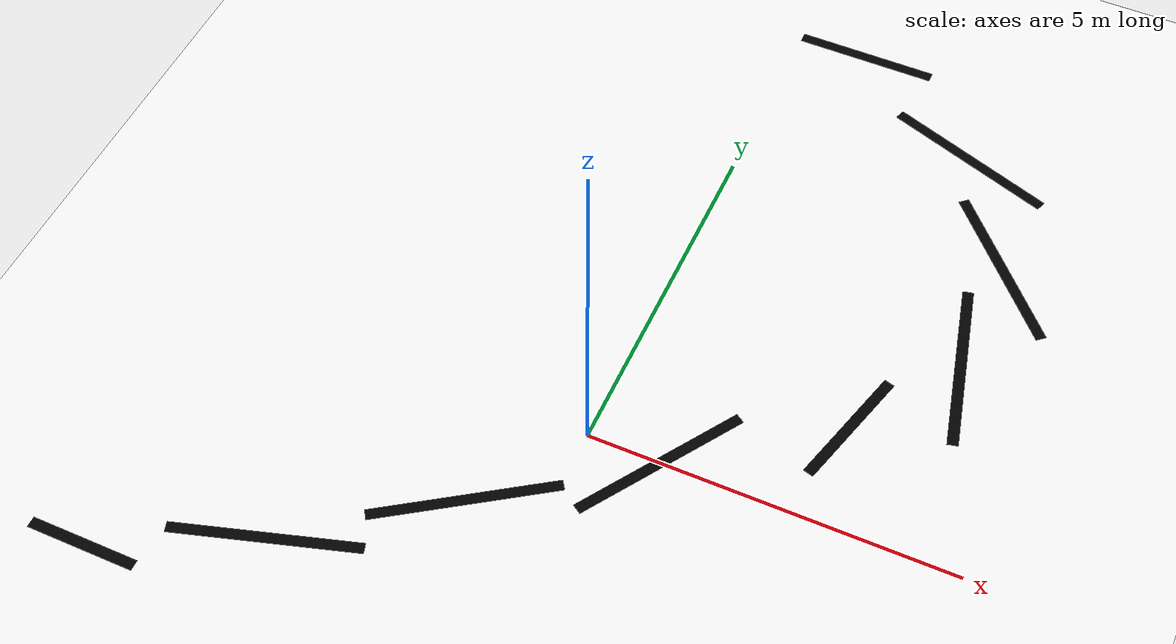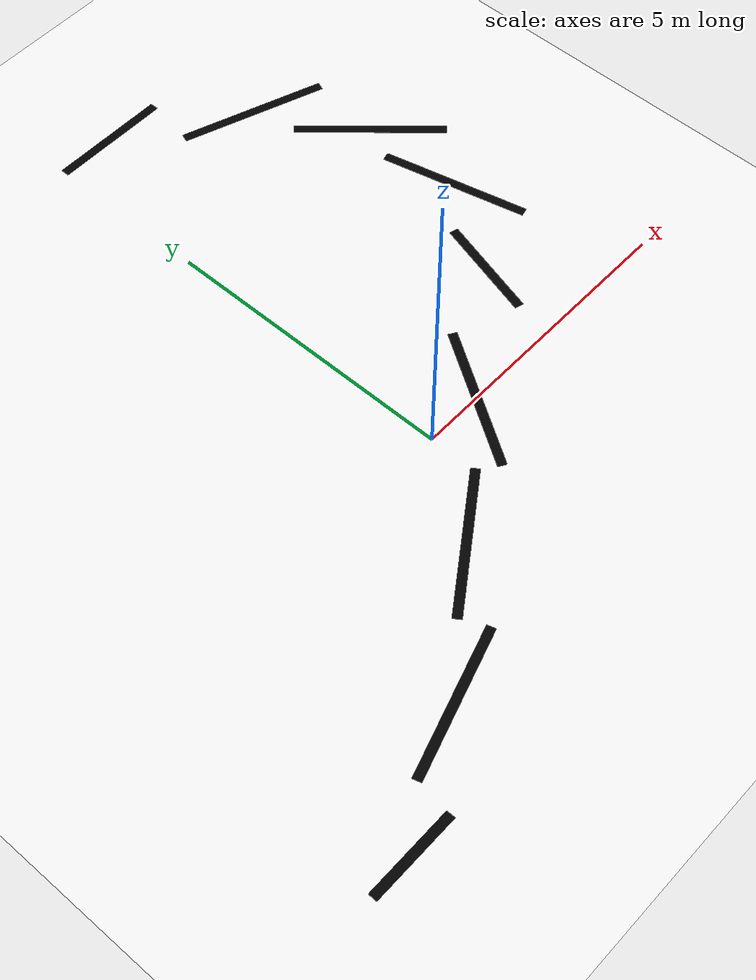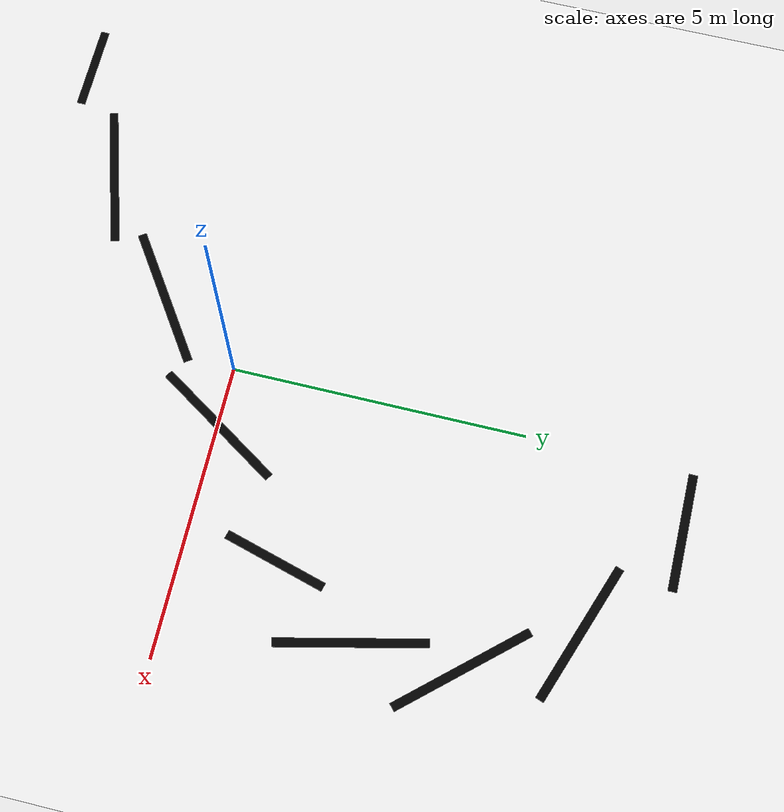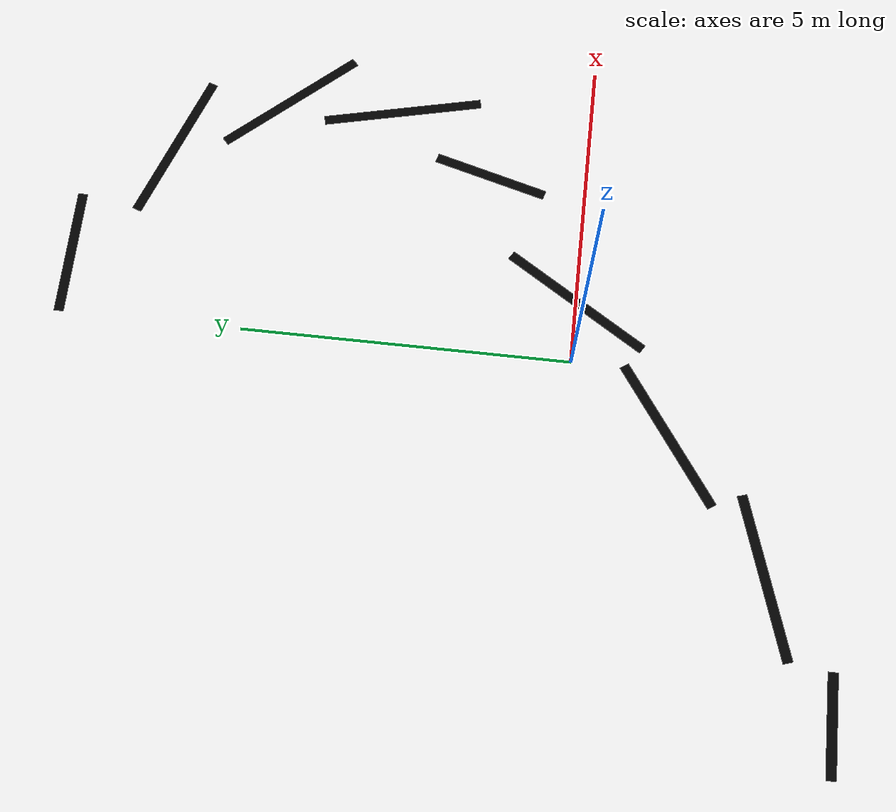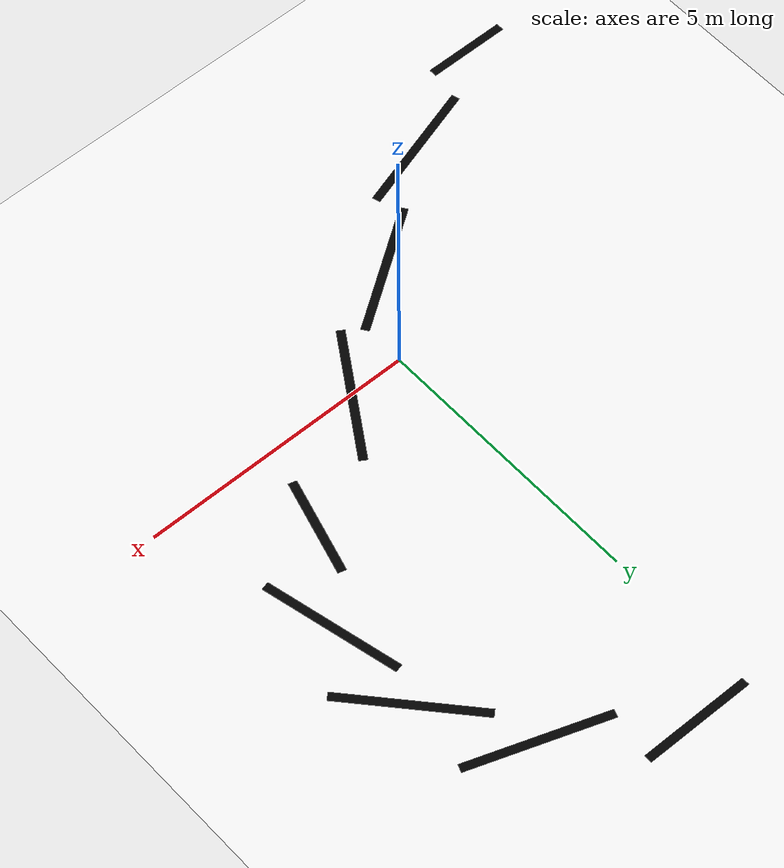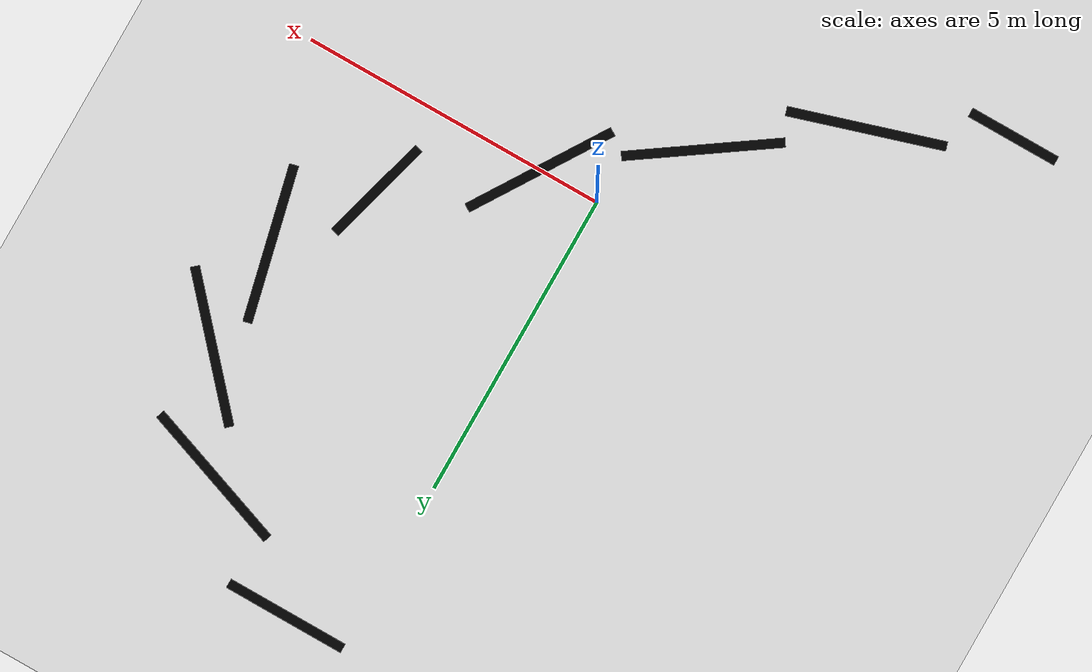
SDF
<?xml version="1.0"?>
<sdf version="1.6">
  <world name="smooth_curve_world">

    <!-- Lumière du soleil -->
    <include>
      <uri>model://sun</uri>
    </include>

    <!-- Sol blanc -->
    <model name="ground_plane">
      <static>true</static>
      <link name="link">
        <collision name="collision">
          <geometry>
            <plane>
              <normal>0 0 1</normal>
              <size>30 30</size>
            </plane>
          </geometry>
        </collision>
        <visual name="visual">
          <geometry>
            <plane>
              <normal>0 0 1</normal>
              <size>30 30</size>
            </plane>
          </geometry>
          <material>
            <script>
              <uri>file://media/materials/scripts/gazebo.material</uri>
              <name>Gazebo/White</name>
            </script>
          </material>
        </visual>
      </link>
    </model>

    <!-- Trajectoire en S fluide avec plusieurs segments courbes -->

    <!-- Segment 1: Départ - ligne droite courte -->
    <model name="line_start">
      <static>true</static>
      <pose>-5 -4 0.001 0 0 0</pose>
      <link name="link">
        <visual name="visual">
          <geometry>
            <box>
              <size>1.5 0.15 0.001</size>
            </box>
          </geometry>
          <material>
            <ambient>0 0 0 1</ambient>
            <diffuse>0 0 0 1</diffuse>
          </material>
        </visual>
      </link>
    </model>

    <!-- Courbe 1: Virage droit montant -->
    <model name="curve_1">
      <static>true</static>
      <pose>-3 -3 0.001 0 0 0.3</pose>
      <link name="link">
        <visual name="visual">
          <geometry>
            <box>
              <size>2.5 0.15 0.001</size>
            </box>
          </geometry>
          <material>
            <ambient>0 0 0 1</ambient>
            <diffuse>0 0 0 1</diffuse>
          </material>
        </visual>
      </link>
    </model>

    <!-- Courbe 2: Suite courbe douce -->
    <model name="curve_2">
      <static>true</static>
      <pose>-1 -1.5 0.001 0 0 0.6</pose>
      <link name="link">
        <visual name="visual">
          <geometry>
            <box>
              <size>2.5 0.15 0.001</size>
            </box>
          </geometry>
          <material>
            <ambient>0 0 0 1</ambient>
            <diffuse>0 0 0 1</diffuse>
          </material>
        </visual>
      </link>
    </model>

    <!-- Courbe 3: Transition vers l'horizontale -->
    <model name="curve_3">
      <static>true</static>
      <pose>1 0 0.001 0 0 1.0</pose>
      <link name="link">
        <visual name="visual">
          <geometry>
            <box>
              <size>2.5 0.15 0.001</size>
            </box>
          </geometry>
          <material>
            <ambient>0 0 0 1</ambient>
            <diffuse>0 0 0 1</diffuse>
          </material>
        </visual>
      </link>
    </model>

    <!-- Segment milieu: Ligne droite courte -->
    <model name="line_middle">
      <static>true</static>
      <pose>3 1.5 0.001 0 0 1.3</pose>
      <link name="link">
        <visual name="visual">
          <geometry>
            <box>
              <size>1.8 0.15 0.001</size>
            </box>
          </geometry>
          <material>
            <ambient>0 0 0 1</ambient>
            <diffuse>0 0 0 1</diffuse>
          </material>
        </visual>
      </link>
    </model>

    <!-- Courbe 4: Virage gauche descendant -->
    <model name="curve_4">
      <static>true</static>
      <pose>4 3 0.001 0 0 1.8</pose>
      <link name="link">
        <visual name="visual">
          <geometry>
            <box>
              <size>2.5 0.15 0.001</size>
            </box>
          </geometry>
          <material>
            <ambient>0 0 0 1</ambient>
            <diffuse>0 0 0 1</diffuse>
          </material>
        </visual>
      </link>
    </model>

    <!-- Courbe 5: Continue la courbe -->
    <model name="curve_5">
      <static>true</static>
      <pose>4 4.8 0.001 0 0 2.3</pose>
      <link name="link">
        <visual name="visual">
          <geometry>
            <box>
              <size>2.5 0.15 0.001</size>
            </box>
          </geometry>
          <material>
            <ambient>0 0 0 1</ambient>
            <diffuse>0 0 0 1</diffuse>
          </material>
        </visual>
      </link>
    </model>

    <!-- Courbe 6: Fin de la courbe vers l'horizontale -->
    <model name="curve_6">
      <static>true</static>
      <pose>3 6.5 0.001 0 0 2.8</pose>
      <link name="link">
        <visual name="visual">
          <geometry>
            <box>
              <size>2.5 0.15 0.001</size>
            </box>
          </geometry>
          <material>
            <ambient>0 0 0 1</ambient>
            <diffuse>0 0 0 1</diffuse>
          </material>
        </visual>
      </link>
    </model>

    <!-- Segment final: Arrivée -->
    <model name="line_end">
      <static>true</static>
      <pose>1 7.8 0.001 0 0 3.14</pose>
      <link name="link">
        <visual name="visual">
          <geometry>
            <box>
              <size>2 0.15 0.001</size>
            </box>
          </geometry>
          <material>
            <ambient>0 0 0 1</ambient>
            <diffuse>0 0 0 1</diffuse>
          </material>
        </visual>
      </link>
    </model>

  </world>
</sdf>
